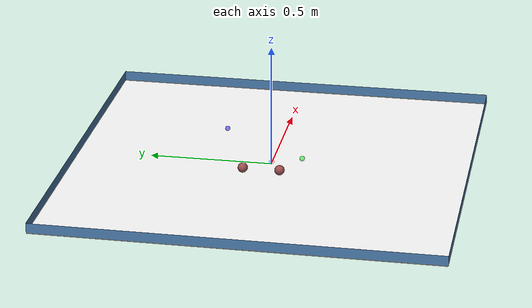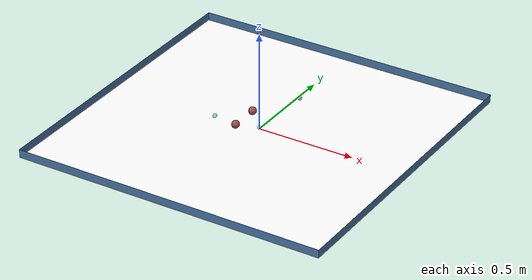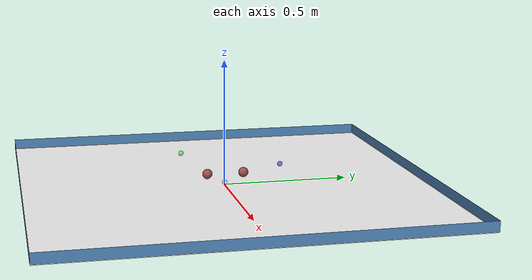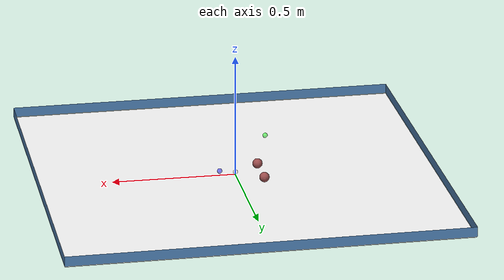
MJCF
<mujoco model="world">
  <visual>
    <quality shadowsize="2048"/>
    <headlight ambient="0.40000000000000002 0.40000000000000002 0.40000000000000002" diffuse="0.80000000000000004 0.80000000000000004 0.80000000000000004" specular="0.10000000000000001 0.10000000000000001 0.10000000000000001"/>
    <map znear="0.01"/>
  </visual>
  <default>
    <default class="/"/>
    <default class="point_mass/">
      <joint type="hinge" axis="0 0 1" limited="true" range="-0.79000000000000004 0.79000000000000004" damping="1"/>
      <motor ctrllimited="true" ctrlrange="-1 1" gear="0.10000000000000001"/>
    </default>
    <default class="sphere_0/"/>
    <default class="sphere_1/"/>
  </default>
  <asset>
    <texture name="skybox" type="skybox" builtin="gradient" rgb1="0.40000000000000002 0.59999999999999998 0.80000000000000004" rgb2="0 0 0" mark="random" markrgb="1 1 1" width="800" height="800"/>
    <texture name="grid" type="2d" builtin="checker" rgb1="0.10000000000000001 0.20000000000000001 0.29999999999999999" rgb2="0.20000000000000001 0.29999999999999999 0.40000000000000002" mark="edge" markrgb="0.20000000000000001 0.29999999999999999 0.40000000000000002" width="300" height="300"/>
    <material name="grid" class="/" texrepeat="1 1" texuniform="true" reflectance="0.20000000000000001"/>
    <material name="decoration" class="/" rgba="0.29999999999999999 0.5 0.69999999999999996 1"/>
    <material name="init_marker" class="/" rgba="0 0 1 0.5"/>
    <material name="goal_marker" class="/" rgba="0 1 0 0.5"/>
    <material name="point_mass/self" class="point_mass/" rgba="0.69999999999999996 0.5 0.29999999999999999 0.10000000000000001"/>
    <material name="sphere_0/obstacle" class="sphere_0/" rgba="0.59999999999999998 0.29999999999999999 0.29999999999999999 1"/>
    <material name="sphere_1/obstacle" class="sphere_1/" rgba="0.59999999999999998 0.29999999999999999 0.29999999999999999 1"/>
  </asset>
  <worldbody>
    <light name="//unnamed_light_0" class="/" pos="0 0 1"/>
    <camera name="fixed" class="/" pos="0 0 0.75" quat="1 0 0 0"/>
    <geom name="ground" class="/" type="plane" size="0.80000000000000004 0.80000000000000004 0.10000000000000001" material="grid" pos="0 0 0"/>
    <geom name="wall_x" class="/" type="plane" size="0.02 0.80000000000000004 0.02" material="decoration" pos="-0.80000000000000004 0 0.02" zaxis="1 0 0"/>
    <geom name="wall_y" class="/" type="plane" size="0.80000000000000004 0.02 0.02" material="decoration" pos="0 -0.80000000000000004 0.02" zaxis="0 1 0"/>
    <geom name="wall_neg_x" class="/" type="plane" size="0.02 0.80000000000000004 0.02" material="decoration" pos="0.80000000000000004 0 0.02" zaxis="-1 0 0"/>
    <geom name="wall_neg_y" class="/" type="plane" size="0.80000000000000004 0.02 0.02" material="decoration" pos="0 0.80000000000000004 0.02" zaxis="0 -1 0"/>
    <geom name="init_marker" class="/" type="sphere" size="0.01" material="init_marker" pos="0.10000000149011612 0.20000000298023224 0.10000000000000001"/>
    <geom name="goal_marker" class="/" type="sphere" size="0.01" material="goal_marker" pos="-0.15000000596046448 -0.15000000596046448 0.10000000000000001"/>
    <body name="point_mass/">
      <body name="point_mass//unnamed_body_0" pos="0 0 0.01">
        <joint name="point_mass/root_x" class="point_mass/" type="slide" pos="0 0 0" axis="1 0 0"/>
        <joint name="point_mass/root_y" class="point_mass/" type="slide" pos="0 0 0" axis="0 1 0"/>
        <geom name="point_mass//unnamed_geom_0" class="point_mass/" type="sphere" size="0.01" material="point_mass/self" mass="0.29999999999999999"/>
      </body>
    </body>
    <body name="sphere_0/">
      <geom name="sphere_0/obstacle" class="sphere_0/" type="sphere" size="0.019999999552965164" material="sphere_0/obstacle" pos="-0.10000000149011612 0.10000000149011612 0.019999999552965164"/>
    </body>
    <body name="sphere_1/">
      <geom name="sphere_1/obstacle" class="sphere_1/" type="sphere" size="0.019999999552965164" material="sphere_1/obstacle" pos="-0.10000000149011612 -0.05000000074505806 0.019999999552965164"/>
    </body>
  </worldbody>
  <actuator>
    <motor name="point_mass/t1" class="point_mass/" joint="point_mass/root_x"/>
    <motor name="point_mass/t2" class="point_mass/" joint="point_mass/root_y"/>
  </actuator>
</mujoco>
